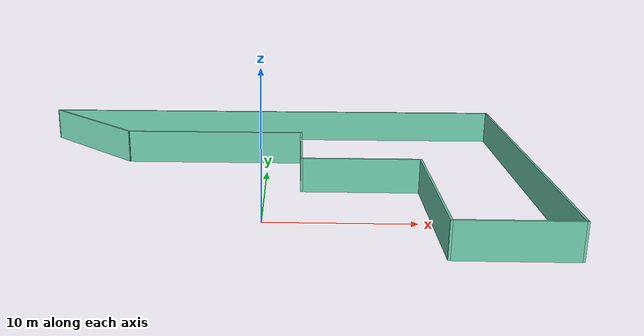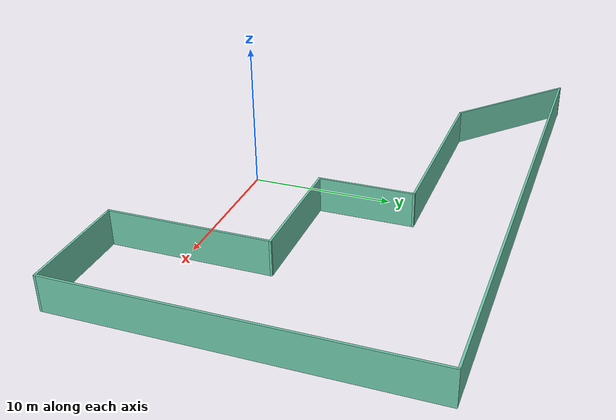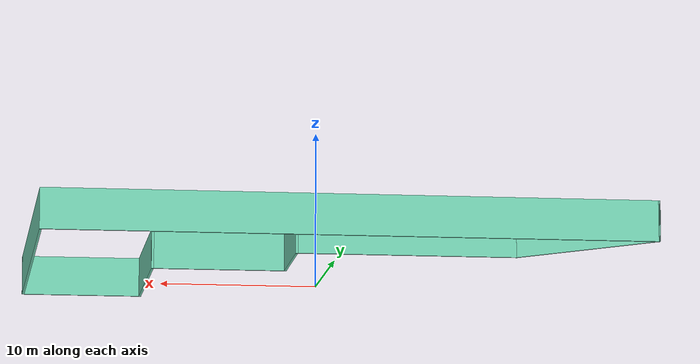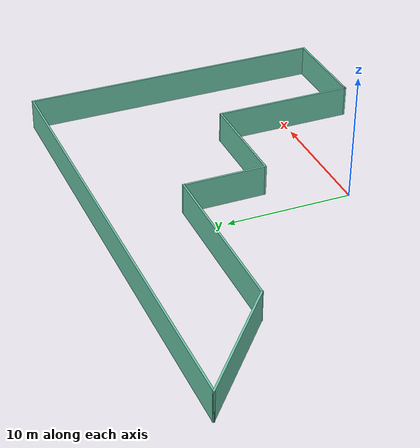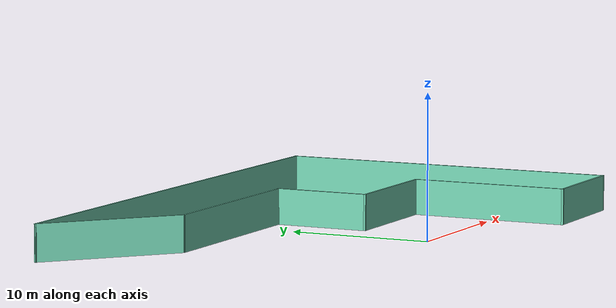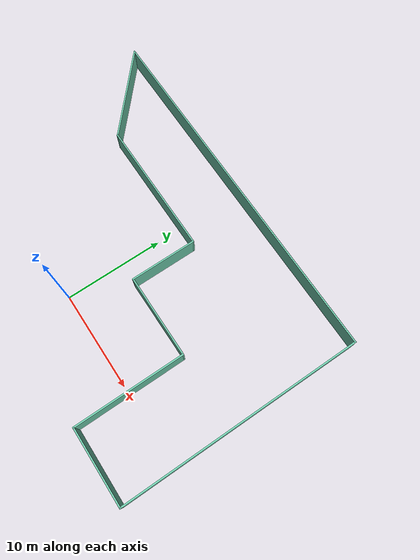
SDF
<?xml version='1.0'?>
<sdf version='1.6'>
  <model name='test'>
    <pose frame=''>-0.025093 6.93607 0 0 -0 0</pose>
    <link name='Wall_0'>
      <collision name='Wall_0_Collision'>
        <geometry>
          <box>
            <size>37.25 0.15 2.5</size>
          </box>
        </geometry>
        <pose frame=''>0 0 1.25 0 -0 0</pose>
      </collision>
      <visual name='Wall_0_Visual'>
        <pose frame=''>0 0 1.25 0 -0 0</pose>
        <geometry>
          <box>
            <size>37.25 0.15 2.5</size>
          </box>
        </geometry>
        <material>
          <script>
            <uri>file://media/materials/scripts/gazebo.material</uri>
            <name>Gazebo/Grey</name>
          </script>
          <ambient>0.435294 0.796078 0.67451 1</ambient>
        </material>
        <meta>
          <layer>0</layer>
        </meta>
      </visual>
      <pose frame=''>0.015427 12.1596 0 0 -0 0</pose>
    </link>
    <link name='Wall_1'>
      <collision name='Wall_1_Collision'>
        <geometry>
          <box>
            <size>24.5 0.15 2.5</size>
          </box>
        </geometry>
        <pose frame=''>0 0 1.25 0 -0 0</pose>
      </collision>
      <visual name='Wall_1_Visual'>
        <pose frame=''>0 0 1.25 0 -0 0</pose>
        <geometry>
          <box>
            <size>24.5 0.15 2.5</size>
          </box>
        </geometry>
        <material>
          <script>
            <uri>file://media/materials/scripts/gazebo.material</uri>
            <name>Gazebo/Grey</name>
          </script>
          <ambient>0.435294 0.796078 0.67451 1</ambient>
        </material>
        <meta>
          <layer>0</layer>
        </meta>
      </visual>
      <pose frame=''>18.5654 -0.015426 0 0 0 -1.5708</pose>
    </link>
    <link name='Wall_2'>
      <collision name='Wall_2_Collision'>
        <geometry>
          <box>
            <size>7.75 0.15 2.5</size>
          </box>
        </geometry>
        <pose frame=''>0 0 1.25 0 -0 0</pose>
      </collision>
      <visual name='Wall_2_Visual'>
        <pose frame=''>0 0 1.25 0 -0 0</pose>
        <geometry>
          <box>
            <size>7.75 0.15 2.5</size>
          </box>
        </geometry>
        <material>
          <script>
            <uri>file://media/materials/scripts/gazebo.material</uri>
            <name>Gazebo/Grey</name>
          </script>
          <ambient>0.435294 0.796078 0.67451 1</ambient>
        </material>
        <meta>
          <layer>0</layer>
        </meta>
      </visual>
      <pose frame=''>14.7654 -12.1904 0 0 -0 3.14159</pose>
    </link>
    <link name='Wall_3'>
      <collision name='Wall_3_Collision'>
        <geometry>
          <box>
            <size>11.25 0.15 2.5</size>
          </box>
        </geometry>
        <pose frame=''>0 0 1.25 0 -0 0</pose>
      </collision>
      <visual name='Wall_3_Visual'>
        <pose frame=''>0 0 1.25 0 -0 0</pose>
        <geometry>
          <box>
            <size>11.25 0.15 2.5</size>
          </box>
        </geometry>
        <material>
          <script>
            <uri>file://media/materials/scripts/gazebo.material</uri>
            <name>Gazebo/Grey</name>
          </script>
          <ambient>0.435294 0.796078 0.67451 1</ambient>
        </material>
        <meta>
          <layer>0</layer>
        </meta>
      </visual>
      <pose frame=''>10.9654 -6.64043 0 0 -0 1.5708</pose>
    </link>
    <link name='Wall_4'>
      <collision name='Wall_4_Collision'>
        <geometry>
          <box>
            <size>8.5 0.15 2.5</size>
          </box>
        </geometry>
        <pose frame=''>0 0 1.25 0 -0 0</pose>
      </collision>
      <visual name='Wall_4_Visual'>
        <pose frame=''>0 0 1.25 0 -0 0</pose>
        <geometry>
          <box>
            <size>8.5 0.15 2.5</size>
          </box>
        </geometry>
        <material>
          <script>
            <uri>file://media/materials/scripts/gazebo.material</uri>
            <name>Gazebo/Grey</name>
          </script>
          <ambient>0.435294 0.796078 0.67451 1</ambient>
        </material>
        <meta>
          <layer>0</layer>
        </meta>
      </visual>
      <pose frame=''>6.79043 -1.09043 0 0 -0 3.14159</pose>
    </link>
    <link name='Wall_5'>
      <collision name='Wall_5_Collision'>
        <geometry>
          <box>
            <size>6.75 0.15 2.5</size>
          </box>
        </geometry>
        <pose frame=''>0 0 1.25 0 -0 0</pose>
      </collision>
      <visual name='Wall_5_Visual'>
        <pose frame=''>0 0 1.25 0 -0 0</pose>
        <geometry>
          <box>
            <size>6.75 0.15 2.5</size>
          </box>
        </geometry>
        <material>
          <script>
            <uri>file://media/materials/scripts/gazebo.material</uri>
            <name>Gazebo/Grey</name>
          </script>
          <ambient>0.435294 0.796078 0.67451 1</ambient>
        </material>
        <meta>
          <layer>0</layer>
        </meta>
      </visual>
      <pose frame=''>2.61543 2.20957 0 0 -0 1.5708</pose>
    </link>
    <link name='Wall_6'>
      <collision name='Wall_6_Collision'>
        <geometry>
          <box>
            <size>13.75 0.15 2.5</size>
          </box>
        </geometry>
        <pose frame=''>0 0 1.25 0 -0 0</pose>
      </collision>
      <visual name='Wall_6_Visual'>
        <pose frame=''>0 0 1.25 0 -0 0</pose>
        <geometry>
          <box>
            <size>13.75 0.15 2.5</size>
          </box>
        </geometry>
        <material>
          <script>
            <uri>file://media/materials/scripts/gazebo.material</uri>
            <name>Gazebo/Grey</name>
          </script>
          <ambient>0.435294 0.796078 0.67451 1</ambient>
        </material>
        <meta>
          <layer>0</layer>
        </meta>
      </visual>
      <pose frame=''>-4.18457 5.50957 0 0 -0 3.14159</pose>
    </link>
    <link name='Wall_7'>
      <collision name='Wall_7_Collision'>
        <geometry>
          <box>
            <size>10.2111 0.15 2.5</size>
          </box>
        </geometry>
        <pose frame=''>0 0 1.25 0 -0 0</pose>
      </collision>
      <visual name='Wall_7_Visual'>
        <pose frame=''>0 0 1.25 0 -0 0</pose>
        <geometry>
          <box>
            <size>10.2111 0.15 2.5</size>
          </box>
        </geometry>
        <material>
          <script>
            <uri>file://media/materials/scripts/gazebo.material</uri>
            <name>Gazebo/Grey</name>
          </script>
          <ambient>0.435294 0.796078 0.67451 1</ambient>
        </material>
        <meta>
          <layer>0</layer>
        </meta>
      </visual>
      <pose frame=''>-14.7596 8.83457 0 0 -0 2.41949</pose>
    </link>
    <static>1</static>
  </model>
</sdf>
